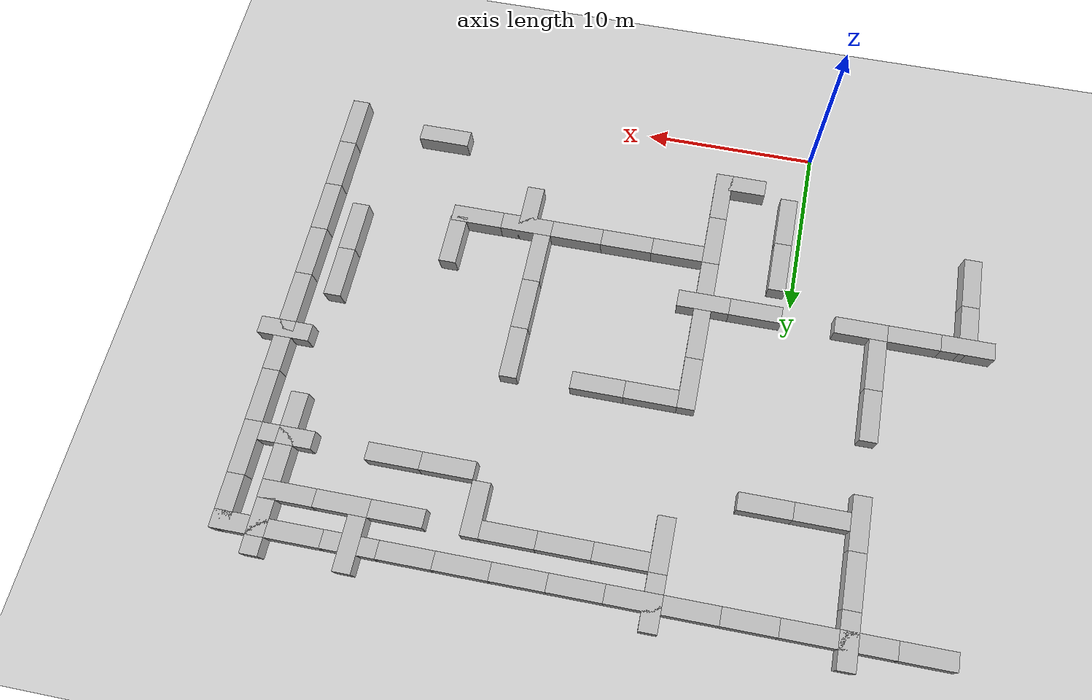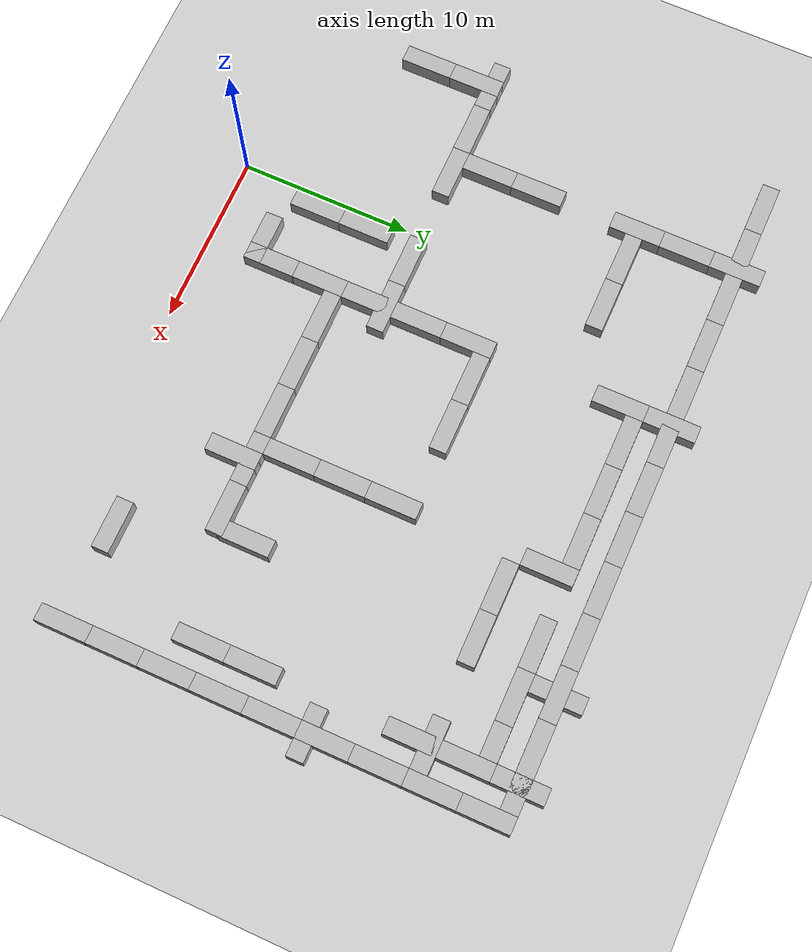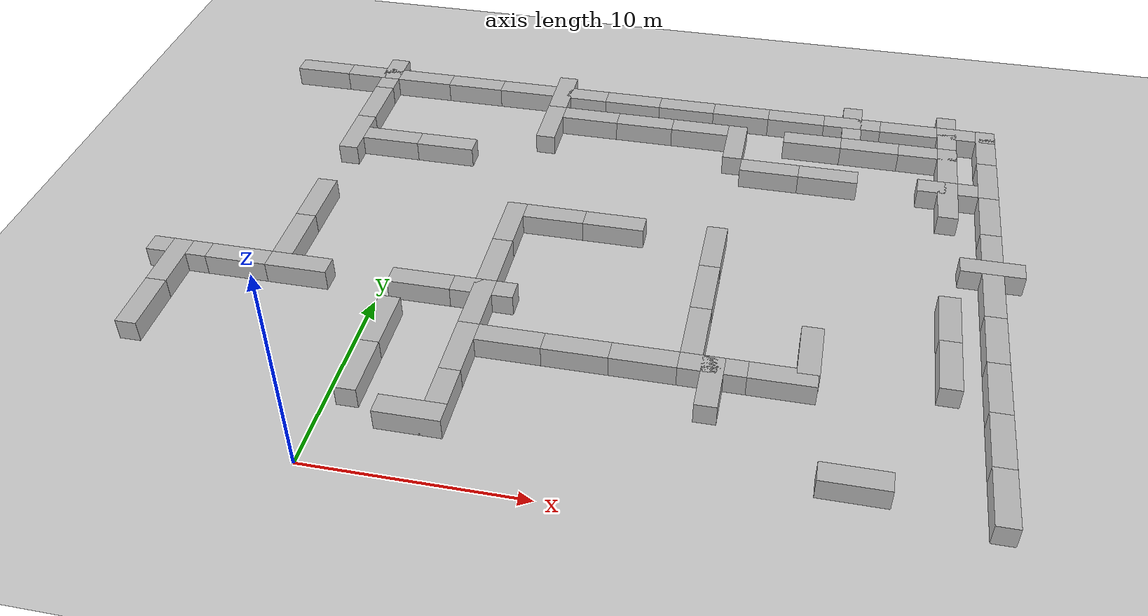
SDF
<sdf version="1.6">
 <world name="default">
  <model name="ground_plane">
   <static>1</static>
   <link name="link">
    <collision name="collision">
     <geometry><plane><normal>0 0 1</normal><size>100 100</size></plane></geometry>
     <surface>
      <contact><collide_bitmask>65535</collide_bitmask></contact>
      <friction><ode><mu>100</mu><mu2>50</mu2></ode></friction>
     </surface>
    </collision>
    <visual name="visual">
     <cast_shadows>0</cast_shadows>
     <geometry><plane><normal>0 0 1</normal><size>100 100</size></plane></geometry>
     <material>
      <script><uri>file://media/materials/scripts/gazebo.material</uri><name>Gazebo/Grey</name></script>
     </material>
    </visual>
   </link>
  </model>
  <model name="wall25">
   <static>1</static>
   <link name="chassis">
    <pose>0 0 1.5 0 -0 0</pose>
    <collision name="collision"><geometry><box><size>3 1 3</size></box></geometry></collision>
    <visual name="visual">
     <geometry><mesh><uri>model://brick_box_3x1x3/meshes/simple_box.dae</uri><scale>3 1 3</scale></mesh></geometry>
     <material>
      <script>
       <uri>model://brick_box_3x1x3/materials/scripts</uri>
       <uri>model://brick_box_3x1x3/materials/textures</uri>
       <name>BrickBox/Diffuse</name>
      </script>
     </material>
    </visual>
   </link>
   <pose>-9 28 -2 0 -0 0</pose>
  </model>
  <model name="wall29">
   <static>1</static>
   <link name="chassis">
    <pose>0 0 1.5 0 -0 0</pose>
    <collision name="collision"><geometry><box><size>3 1 3</size></box></geometry></collision>
    <visual name="visual">
     <geometry><mesh><uri>model://brick_box_3x1x3/meshes/simple_box.dae</uri><scale>3 1 3</scale></mesh></geometry>
     <material>
      <script>
       <uri>model://brick_box_3x1x3/materials/scripts</uri>
       <uri>model://brick_box_3x1x3/materials/textures</uri>
       <name>BrickBox/Diffuse</name>
      </script>
     </material>
    </visual>
   </link>
   <pose>-6 28 -2 0 -0 0</pose>
  </model>
  <model name="wall33">
   <static>1</static>
   <link name="chassis">
    <pose>0 0 1.5 0 -0 0</pose>
    <collision name="collision"><geometry><box><size>3 1 3</size></box></geometry></collision>
    <visual name="visual">
     <geometry><mesh><uri>model://brick_box_3x1x3/meshes/simple_box.dae</uri><scale>3 1 3</scale></mesh></geometry>
     <material>
      <script>
       <uri>model://brick_box_3x1x3/materials/scripts</uri>
       <uri>model://brick_box_3x1x3/materials/textures</uri>
       <name>BrickBox/Diffuse</name>
      </script>
     </material>
    </visual>
   </link>
   <pose>-3 28 -2 0 -0 0</pose>
  </model>
  <model name="wall37">
   <static>1</static>
   <link name="chassis">
    <pose>0 0 1.5 0 -0 0</pose>
    <collision name="collision"><geometry><box><size>3 1 3</size></box></geometry></collision>
    <visual name="visual">
     <geometry><mesh><uri>model://brick_box_3x1x3/meshes/simple_box.dae</uri><scale>3 1 3</scale></mesh></geometry>
     <material>
      <script>
       <uri>model://brick_box_3x1x3/materials/scripts</uri>
       <uri>model://brick_box_3x1x3/materials/textures</uri>
       <name>BrickBox/Diffuse</name>
      </script>
     </material>
    </visual>
   </link>
   <pose>0 28 -2 0 -0 0</pose>
  </model>
  <model name="wall41">
   <static>1</static>
   <link name="chassis">
    <pose>0 0 1.5 0 -0 0</pose>
    <collision name="collision"><geometry><box><size>3 1 3</size></box></geometry></collision>
    <visual name="visual">
     <geometry><mesh><uri>model://brick_box_3x1x3/meshes/simple_box.dae</uri><scale>3 1 3</scale></mesh></geometry>
     <material>
      <script>
       <uri>model://brick_box_3x1x3/materials/scripts</uri>
       <uri>model://brick_box_3x1x3/materials/textures</uri>
       <name>BrickBox/Diffuse</name>
      </script>
     </material>
    </visual>
   </link>
   <pose>3 28 -2 0 -0 0</pose>
  </model>
  <model name="wall43">
   <static>1</static>
   <link name="chassis">
    <pose>0 0 1.5 0 -0 0</pose>
    <collision name="collision"><geometry><box><size>3 1 3</size></box></geometry></collision>
    <visual name="visual">
     <geometry><mesh><uri>model://brick_box_3x1x3/meshes/simple_box.dae</uri><scale>3 1 3</scale></mesh></geometry>
     <material>
      <script>
       <uri>model://brick_box_3x1x3/materials/scripts</uri>
       <uri>model://brick_box_3x1x3/materials/textures</uri>
       <name>BrickBox/Diffuse</name>
      </script>
     </material>
    </visual>
   </link>
   <pose>28 3 -2 0 -0 1.5708</pose>
  </model>
  <model name="wall45">
   <static>1</static>
   <link name="chassis">
    <pose>0 0 1.5 0 -0 0</pose>
    <collision name="collision"><geometry><box><size>3 1 3</size></box></geometry></collision>
    <visual name="visual">
     <geometry><mesh><uri>model://brick_box_3x1x3/meshes/simple_box.dae</uri><scale>3 1 3</scale></mesh></geometry>
     <material>
      <script>
       <uri>model://brick_box_3x1x3/materials/scripts</uri>
       <uri>model://brick_box_3x1x3/materials/textures</uri>
       <name>BrickBox/Diffuse</name>
      </script>
     </material>
    </visual>
   </link>
   <pose>6 28 -2 0 -0 0</pose>
  </model>
  <model name="wall47">
   <static>1</static>
   <link name="chassis">
    <pose>0 0 1.5 0 -0 0</pose>
    <collision name="collision"><geometry><box><size>3 1 3</size></box></geometry></collision>
    <visual name="visual">
     <geometry><mesh><uri>model://brick_box_3x1x3/meshes/simple_box.dae</uri><scale>3 1 3</scale></mesh></geometry>
     <material>
      <script>
       <uri>model://brick_box_3x1x3/materials/scripts</uri>
       <uri>model://brick_box_3x1x3/materials/textures</uri>
       <name>BrickBox/Diffuse</name>
      </script>
     </material>
    </visual>
   </link>
   <pose>28 6 -2 0 -0 1.5708</pose>
  </model>
  <model name="wall49">
   <static>1</static>
   <link name="chassis">
    <pose>0 0 1.5 0 -0 0</pose>
    <collision name="collision"><geometry><box><size>3 1 3</size></box></geometry></collision>
    <visual name="visual">
     <geometry><mesh><uri>model://brick_box_3x1x3/meshes/simple_box.dae</uri><scale>3 1 3</scale></mesh></geometry>
     <material>
      <script>
       <uri>model://brick_box_3x1x3/materials/scripts</uri>
       <uri>model://brick_box_3x1x3/materials/textures</uri>
       <name>BrickBox/Diffuse</name>
      </script>
     </material>
    </visual>
   </link>
   <pose>9 28 -2 0 -0 0</pose>
  </model>
  <model name="wall51">
   <static>1</static>
   <link name="chassis">
    <pose>0 0 1.5 0 -0 0</pose>
    <collision name="collision"><geometry><box><size>3 1 3</size></box></geometry></collision>
    <visual name="visual">
     <geometry><mesh><uri>model://brick_box_3x1x3/meshes/simple_box.dae</uri><scale>3 1 3</scale></mesh></geometry>
     <material>
      <script>
       <uri>model://brick_box_3x1x3/materials/scripts</uri>
       <uri>model://brick_box_3x1x3/materials/textures</uri>
       <name>BrickBox/Diffuse</name>
      </script>
     </material>
    </visual>
   </link>
   <pose>28 9 -2 0 -0 1.5708</pose>
  </model>
  <model name="wall53">
   <static>1</static>
   <link name="chassis">
    <pose>0 0 1.5 0 -0 0</pose>
    <collision name="collision"><geometry><box><size>3 1 3</size></box></geometry></collision>
    <visual name="visual">
     <geometry><mesh><uri>model://brick_box_3x1x3/meshes/simple_box.dae</uri><scale>3 1 3</scale></mesh></geometry>
     <material>
      <script>
       <uri>model://brick_box_3x1x3/materials/scripts</uri>
       <uri>model://brick_box_3x1x3/materials/textures</uri>
       <name>BrickBox/Diffuse</name>
      </script>
     </material>
    </visual>
   </link>
   <pose>12 28 -2 0 -0 0</pose>
  </model>
  <model name="wall55">
   <static>1</static>
   <link name="chassis">
    <pose>0 0 1.5 0 -0 0</pose>
    <collision name="collision"><geometry><box><size>3 1 3</size></box></geometry></collision>
    <visual name="visual">
     <geometry><mesh><uri>model://brick_box_3x1x3/meshes/simple_box.dae</uri><scale>3 1 3</scale></mesh></geometry>
     <material>
      <script>
       <uri>model://brick_box_3x1x3/materials/scripts</uri>
       <uri>model://brick_box_3x1x3/materials/textures</uri>
       <name>BrickBox/Diffuse</name>
      </script>
     </material>
    </visual>
   </link>
   <pose>28 12 -2 0 -0 1.5708</pose>
  </model>
  <model name="wall57">
   <static>1</static>
   <link name="chassis">
    <pose>0 0 1.5 0 -0 0</pose>
    <collision name="collision"><geometry><box><size>3 1 3</size></box></geometry></collision>
    <visual name="visual">
     <geometry><mesh><uri>model://brick_box_3x1x3/meshes/simple_box.dae</uri><scale>3 1 3</scale></mesh></geometry>
     <material>
      <script>
       <uri>model://brick_box_3x1x3/materials/scripts</uri>
       <uri>model://brick_box_3x1x3/materials/textures</uri>
       <name>BrickBox/Diffuse</name>
      </script>
     </material>
    </visual>
   </link>
   <pose>15 28 -2 0 -0 0</pose>
  </model>
  <model name="wall59">
   <static>1</static>
   <link name="chassis">
    <pose>0 0 1.5 0 -0 0</pose>
    <collision name="collision"><geometry><box><size>3 1 3</size></box></geometry></collision>
    <visual name="visual">
     <geometry><mesh><uri>model://brick_box_3x1x3/meshes/simple_box.dae</uri><scale>3 1 3</scale></mesh></geometry>
     <material>
      <script>
       <uri>model://brick_box_3x1x3/materials/scripts</uri>
       <uri>model://brick_box_3x1x3/materials/textures</uri>
       <name>BrickBox/Diffuse</name>
      </script>
     </material>
    </visual>
   </link>
   <pose>28 15 -2 0 -0 1.5708</pose>
  </model>
  <model name="wall61">
   <static>1</static>
   <link name="chassis">
    <pose>0 0 1.5 0 -0 0</pose>
    <collision name="collision"><geometry><box><size>3 1 3</size></box></geometry></collision>
    <visual name="visual">
     <geometry><mesh><uri>model://brick_box_3x1x3/meshes/simple_box.dae</uri><scale>3 1 3</scale></mesh></geometry>
     <material>
      <script>
       <uri>model://brick_box_3x1x3/materials/scripts</uri>
       <uri>model://brick_box_3x1x3/materials/textures</uri>
       <name>BrickBox/Diffuse</name>
      </script>
     </material>
    </visual>
   </link>
   <pose>18 28 -2 0 -0 0</pose>
  </model>
  <model name="wall63">
   <static>1</static>
   <link name="chassis">
    <pose>0 0 1.5 0 -0 0</pose>
    <collision name="collision"><geometry><box><size>3 1 3</size></box></geometry></collision>
    <visual name="visual">
     <geometry><mesh><uri>model://brick_box_3x1x3/meshes/simple_box.dae</uri><scale>3 1 3</scale></mesh></geometry>
     <material>
      <script>
       <uri>model://brick_box_3x1x3/materials/scripts</uri>
       <uri>model://brick_box_3x1x3/materials/textures</uri>
       <name>BrickBox/Diffuse</name>
      </script>
     </material>
    </visual>
   </link>
   <pose>28 18 -2 0 -0 1.5708</pose>
  </model>
  <model name="wall65">
   <static>1</static>
   <link name="chassis">
    <pose>0 0 1.5 0 -0 0</pose>
    <collision name="collision"><geometry><box><size>3 1 3</size></box></geometry></collision>
    <visual name="visual">
     <geometry><mesh><uri>model://brick_box_3x1x3/meshes/simple_box.dae</uri><scale>3 1 3</scale></mesh></geometry>
     <material>
      <script>
       <uri>model://brick_box_3x1x3/materials/scripts</uri>
       <uri>model://brick_box_3x1x3/materials/textures</uri>
       <name>BrickBox/Diffuse</name>
      </script>
     </material>
    </visual>
   </link>
   <pose>21 28 -2 0 -0 0</pose>
  </model>
  <model name="wall67">
   <static>1</static>
   <link name="chassis">
    <pose>0 0 1.5 0 -0 0</pose>
    <collision name="collision"><geometry><box><size>3 1 3</size></box></geometry></collision>
    <visual name="visual">
     <geometry><mesh><uri>model://brick_box_3x1x3/meshes/simple_box.dae</uri><scale>3 1 3</scale></mesh></geometry>
     <material>
      <script>
       <uri>model://brick_box_3x1x3/materials/scripts</uri>
       <uri>model://brick_box_3x1x3/materials/textures</uri>
       <name>BrickBox/Diffuse</name>
      </script>
     </material>
    </visual>
   </link>
   <pose>28 21 -2 0 -0 1.5708</pose>
  </model>
  <model name="wall69">
   <static>1</static>
   <link name="chassis">
    <pose>0 0 1.5 0 -0 0</pose>
    <collision name="collision"><geometry><box><size>3 1 3</size></box></geometry></collision>
    <visual name="visual">
     <geometry><mesh><uri>model://brick_box_3x1x3/meshes/simple_box.dae</uri><scale>3 1 3</scale></mesh></geometry>
     <material>
      <script>
       <uri>model://brick_box_3x1x3/materials/scripts</uri>
       <uri>model://brick_box_3x1x3/materials/textures</uri>
       <name>BrickBox/Diffuse</name>
      </script>
     </material>
    </visual>
   </link>
   <pose>24 28 -2 0 -0 0</pose>
  </model>
  <model name="wall71">
   <static>1</static>
   <link name="chassis">
    <pose>0 0 1.5 0 -0 0</pose>
    <collision name="collision"><geometry><box><size>3 1 3</size></box></geometry></collision>
    <visual name="visual">
     <geometry><mesh><uri>model://brick_box_3x1x3/meshes/simple_box.dae</uri><scale>3 1 3</scale></mesh></geometry>
     <material>
      <script>
       <uri>model://brick_box_3x1x3/materials/scripts</uri>
       <uri>model://brick_box_3x1x3/materials/textures</uri>
       <name>BrickBox/Diffuse</name>
      </script>
     </material>
    </visual>
   </link>
   <pose>28 24 -2 0 -0 1.5708</pose>
  </model>
  <model name="wall73">
   <static>1</static>
   <link name="chassis">
    <pose>0 0 1.5 0 -0 0</pose>
    <collision name="collision"><geometry><box><size>3 1 3</size></box></geometry></collision>
    <visual name="visual">
     <geometry><mesh><uri>model://brick_box_3x1x3/meshes/simple_box.dae</uri><scale>3 1 3</scale></mesh></geometry>
     <material>
      <script>
       <uri>model://brick_box_3x1x3/materials/scripts</uri>
       <uri>model://brick_box_3x1x3/materials/textures</uri>
       <name>BrickBox/Diffuse</name>
      </script>
     </material>
    </visual>
   </link>
   <pose>27 28 -2 0 -0 0</pose>
  </model>
  <model name="wall75">
   <static>1</static>
   <link name="chassis">
    <pose>0 0 1.5 0 -0 0</pose>
    <collision name="collision"><geometry><box><size>3 1 3</size></box></geometry></collision>
    <visual name="visual">
     <geometry><mesh><uri>model://brick_box_3x1x3/meshes/simple_box.dae</uri><scale>3 1 3</scale></mesh></geometry>
     <material>
      <script>
       <uri>model://brick_box_3x1x3/materials/scripts</uri>
       <uri>model://brick_box_3x1x3/materials/textures</uri>
       <name>BrickBox/Diffuse</name>
      </script>
     </material>
    </visual>
   </link>
   <pose>28 27 -2 0 -0 1.5708</pose>
  </model>
  <model name="wall128">
   <static>1</static>
   <link name="chassis">
    <pose>0 0 1.5 0 -0 0</pose>
    <collision name="collision"><geometry><box><size>3 1 3</size></box></geometry></collision>
    <visual name="visual">
     <geometry><mesh><uri>model://brick_box_3x1x3/meshes/simple_box.dae</uri><scale>3 1 3</scale></mesh></geometry>
     <material>
      <script>
       <uri>model://brick_box_3x1x3/materials/scripts</uri>
       <uri>model://brick_box_3x1x3/materials/textures</uri>
       <name>BrickBox/Diffuse</name>
      </script>
     </material>
    </visual>
   </link>
   <pose>20.0507 9.72113 -2 0 -0 1.5708</pose>
  </model>
  <model name="wall135">
   <static>1</static>
   <link name="chassis">
    <pose>0 0 1.5 0 -0 0</pose>
    <collision name="collision"><geometry><box><size>3 1 3</size></box></geometry></collision>
    <visual name="visual">
     <geometry><mesh><uri>model://brick_box_3x1x3/meshes/simple_box.dae</uri><scale>3 1 3</scale></mesh></geometry>
     <material>
      <script>
       <uri>model://brick_box_3x1x3/materials/scripts</uri>
       <uri>model://brick_box_3x1x3/materials/textures</uri>
       <name>BrickBox/Diffuse</name>
      </script>
     </material>
    </visual>
   </link>
   <pose>5 4 -2 0 -0 1.5708</pose>
  </model>
  <model name="wall136">
   <static>1</static>
   <link name="chassis">
    <pose>0 0 1.5 0 -0 0</pose>
    <collision name="collision"><geometry><box><size>3 1 3</size></box></geometry></collision>
    <visual name="visual">
     <geometry><mesh><uri>model://brick_box_3x1x3/meshes/simple_box.dae</uri><scale>3 1 3</scale></mesh></geometry>
     <material>
      <script>
       <uri>model://brick_box_3x1x3/materials/scripts</uri>
       <uri>model://brick_box_3x1x3/materials/textures</uri>
       <name>BrickBox/Diffuse</name>
      </script>
     </material>
    </visual>
   </link>
   <pose>5 7 -2 0 -0 1.5708</pose>
  </model>
  <model name="wall137">
   <static>1</static>
   <link name="chassis">
    <pose>0 0 1.5 0 -0 0</pose>
    <collision name="collision"><geometry><box><size>3 1 3</size></box></geometry></collision>
    <visual name="visual">
     <geometry><mesh><uri>model://brick_box_3x1x3/meshes/simple_box.dae</uri><scale>3 1 3</scale></mesh></geometry>
     <material>
      <script>
       <uri>model://brick_box_3x1x3/materials/scripts</uri>
       <uri>model://brick_box_3x1x3/materials/textures</uri>
       <name>BrickBox/Diffuse</name>
      </script>
     </material>
    </visual>
   </link>
   <pose>5 10 -2 0 -0 1.5708</pose>
  </model>
  <model name="wall138">
   <static>1</static>
   <link name="chassis">
    <pose>0 0 1.5 0 -0 0</pose>
    <collision name="collision"><geometry><box><size>3 1 3</size></box></geometry></collision>
    <visual name="visual">
     <geometry><mesh><uri>model://brick_box_3x1x3/meshes/simple_box.dae</uri><scale>3 1 3</scale></mesh></geometry>
     <material>
      <script>
       <uri>model://brick_box_3x1x3/materials/scripts</uri>
       <uri>model://brick_box_3x1x3/materials/textures</uri>
       <name>BrickBox/Diffuse</name>
      </script>
     </material>
    </visual>
   </link>
   <pose>5 13 -2 0 -0 1.5708</pose>
  </model>
  <model name="wall139">
   <static>1</static>
   <link name="chassis">
    <pose>0 0 1.5 0 -0 0</pose>
    <collision name="collision"><geometry><box><size>3 1 3</size></box></geometry></collision>
    <visual name="visual">
     <geometry><mesh><uri>model://brick_box_3x1x3/meshes/simple_box.dae</uri><scale>3 1 3</scale></mesh></geometry>
     <material>
      <script>
       <uri>model://brick_box_3x1x3/materials/scripts</uri>
       <uri>model://brick_box_3x1x3/materials/textures</uri>
       <name>BrickBox/Diffuse</name>
      </script>
     </material>
    </visual>
   </link>
   <pose>5 16 -2 0 -0 1.5708</pose>
  </model>
  <model name="wall140">
   <static>1</static>
   <link name="chassis">
    <pose>0 0 1.5 0 -0 0</pose>
    <collision name="collision"><geometry><box><size>3 1 3</size></box></geometry></collision>
    <visual name="visual">
     <geometry><mesh><uri>model://brick_box_3x1x3/meshes/simple_box.dae</uri><scale>3 1 3</scale></mesh></geometry>
     <material>
      <script>
       <uri>model://brick_box_3x1x3/materials/scripts</uri>
       <uri>model://brick_box_3x1x3/materials/textures</uri>
       <name>BrickBox/Diffuse</name>
      </script>
     </material>
    </visual>
   </link>
   <pose>5 25 -2 0 -0 1.5708</pose>
  </model>
  <model name="wall141">
   <static>1</static>
   <link name="chassis">
    <pose>0 0 1.5 0 -0 0</pose>
    <collision name="collision"><geometry><box><size>3 1 3</size></box></geometry></collision>
    <visual name="visual">
     <geometry><mesh><uri>model://brick_box_3x1x3/meshes/simple_box.dae</uri><scale>3 1 3</scale></mesh></geometry>
     <material>
      <script>
       <uri>model://brick_box_3x1x3/materials/scripts</uri>
       <uri>model://brick_box_3x1x3/materials/textures</uri>
       <name>BrickBox/Diffuse</name>
      </script>
     </material>
    </visual>
   </link>
   <pose>5 28 -2 0 -0 1.5708</pose>
  </model>
  <model name="wall144">
   <static>1</static>
   <link name="chassis">
    <pose>0 0 1.5 0 -0 0</pose>
    <collision name="collision"><geometry><box><size>3 1 3</size></box></geometry></collision>
    <visual name="visual">
     <geometry><mesh><uri>model://brick_box_3x1x3/meshes/simple_box.dae</uri><scale>3 1 3</scale></mesh></geometry>
     <material>
      <script>
       <uri>model://brick_box_3x1x3/materials/scripts</uri>
       <uri>model://brick_box_3x1x3/materials/textures</uri>
       <name>BrickBox/Diffuse</name>
      </script>
     </material>
    </visual>
   </link>
   <pose>-10 11 -2 0 -0 0</pose>
  </model>
  <model name="wall145">
   <static>1</static>
   <link name="chassis">
    <pose>0 0 1.5 0 -0 0</pose>
    <collision name="collision"><geometry><box><size>3 1 3</size></box></geometry></collision>
    <visual name="visual">
     <geometry><mesh><uri>model://brick_box_3x1x3/meshes/simple_box.dae</uri><scale>3 1 3</scale></mesh></geometry>
     <material>
      <script>
       <uri>model://brick_box_3x1x3/materials/scripts</uri>
       <uri>model://brick_box_3x1x3/materials/textures</uri>
       <name>BrickBox/Diffuse</name>
      </script>
     </material>
    </visual>
   </link>
   <pose>-7 11 -2 0 -0 0</pose>
  </model>
  <model name="wall146">
   <static>1</static>
   <link name="chassis">
    <pose>0 0 1.5 0 -0 0</pose>
    <collision name="collision"><geometry><box><size>3 1 3</size></box></geometry></collision>
    <visual name="visual">
     <geometry><mesh><uri>model://brick_box_3x1x3/meshes/simple_box.dae</uri><scale>3 1 3</scale></mesh></geometry>
     <material>
      <script>
       <uri>model://brick_box_3x1x3/materials/scripts</uri>
       <uri>model://brick_box_3x1x3/materials/textures</uri>
       <name>BrickBox/Diffuse</name>
      </script>
     </material>
    </visual>
   </link>
   <pose>-4 11 -2 0 -0 0</pose>
  </model>
  <model name="wall147">
   <static>1</static>
   <link name="chassis">
    <pose>0 0 1.5 0 -0 0</pose>
    <collision name="collision"><geometry><box><size>3 1 3</size></box></geometry></collision>
    <visual name="visual">
     <geometry><mesh><uri>model://brick_box_3x1x3/meshes/simple_box.dae</uri><scale>3 1 3</scale></mesh></geometry>
     <material>
      <script>
       <uri>model://brick_box_3x1x3/materials/scripts</uri>
       <uri>model://brick_box_3x1x3/materials/textures</uri>
       <name>BrickBox/Diffuse</name>
      </script>
     </material>
    </visual>
   </link>
   <pose>2 11 -2 0 -0 0</pose>
  </model>
  <model name="wall148">
   <static>1</static>
   <link name="chassis">
    <pose>0 0 1.5 0 -0 0</pose>
    <collision name="collision"><geometry><box><size>3 1 3</size></box></geometry></collision>
    <visual name="visual">
     <geometry><mesh><uri>model://brick_box_3x1x3/meshes/simple_box.dae</uri><scale>3 1 3</scale></mesh></geometry>
     <material>
      <script>
       <uri>model://brick_box_3x1x3/materials/scripts</uri>
       <uri>model://brick_box_3x1x3/materials/textures</uri>
       <name>BrickBox/Diffuse</name>
      </script>
     </material>
    </visual>
   </link>
   <pose>5 11 -2 0 -0 0</pose>
  </model>
  <model name="wall153">
   <static>1</static>
   <link name="chassis">
    <pose>0 0 1.5 0 -0 0</pose>
    <collision name="collision"><geometry><box><size>3 1 3</size></box></geometry></collision>
    <visual name="visual">
     <geometry><mesh><uri>model://brick_box_3x1x3/meshes/simple_box.dae</uri><scale>3 1 3</scale></mesh></geometry>
     <material>
      <script>
       <uri>model://brick_box_3x1x3/materials/scripts</uri>
       <uri>model://brick_box_3x1x3/materials/textures</uri>
       <name>BrickBox/Diffuse</name>
      </script>
     </material>
    </visual>
   </link>
   <pose>-10 7 -2 0 -0 1.5708</pose>
  </model>
  <model name="wall154">
   <static>1</static>
   <link name="chassis">
    <pose>0 0 1.5 0 -0 0</pose>
    <collision name="collision"><geometry><box><size>3 1 3</size></box></geometry></collision>
    <visual name="visual">
     <geometry><mesh><uri>model://brick_box_3x1x3/meshes/simple_box.dae</uri><scale>3 1 3</scale></mesh></geometry>
     <material>
      <script>
       <uri>model://brick_box_3x1x3/materials/scripts</uri>
       <uri>model://brick_box_3x1x3/materials/textures</uri>
       <name>BrickBox/Diffuse</name>
      </script>
     </material>
    </visual>
   </link>
   <pose>-10 10 -2 0 -0 1.5708</pose>
  </model>
  <model name="wall159">
   <static>1</static>
   <link name="chassis">
    <pose>0 0 1.5 0 -0 0</pose>
    <collision name="collision"><geometry><box><size>3 1 3</size></box></geometry></collision>
    <visual name="visual">
     <geometry><mesh><uri>model://brick_box_3x1x3/meshes/simple_box.dae</uri><scale>3 1 3</scale></mesh></geometry>
     <material>
      <script>
       <uri>model://brick_box_3x1x3/materials/scripts</uri>
       <uri>model://brick_box_3x1x3/materials/textures</uri>
       <name>BrickBox/Diffuse</name>
      </script>
     </material>
    </visual>
   </link>
   <pose>4 3 -2 0 -0 0</pose>
  </model>
  <model name="wall167">
   <static>1</static>
   <link name="chassis">
    <pose>0 0 1.5 0 -0 0</pose>
    <collision name="collision"><geometry><box><size>3 1 3</size></box></geometry></collision>
    <visual name="visual">
     <geometry><mesh><uri>model://brick_box_3x1x3/meshes/simple_box.dae</uri><scale>3 1 3</scale></mesh></geometry>
     <material>
      <script>
       <uri>model://brick_box_3x1x3/materials/scripts</uri>
       <uri>model://brick_box_3x1x3/materials/textures</uri>
       <name>BrickBox/Diffuse</name>
      </script>
     </material>
    </visual>
   </link>
   <pose>1 5 -2 0 -0 1.5708</pose>
  </model>
  <model name="wall168">
   <static>1</static>
   <link name="chassis">
    <pose>0 0 1.5 0 -0 0</pose>
    <collision name="collision"><geometry><box><size>3 1 3</size></box></geometry></collision>
    <visual name="visual">
     <geometry><mesh><uri>model://brick_box_3x1x3/meshes/simple_box.dae</uri><scale>3 1 3</scale></mesh></geometry>
     <material>
      <script>
       <uri>model://brick_box_3x1x3/materials/scripts</uri>
       <uri>model://brick_box_3x1x3/materials/textures</uri>
       <name>BrickBox/Diffuse</name>
      </script>
     </material>
    </visual>
   </link>
   <pose>1 8 -2 0 -0 1.5708</pose>
  </model>
  <model name="wall169">
   <static>1</static>
   <link name="chassis">
    <pose>0 0 1.5 0 -0 0</pose>
    <collision name="collision"><geometry><box><size>3 1 3</size></box></geometry></collision>
    <visual name="visual">
     <geometry><mesh><uri>model://brick_box_3x1x3/meshes/simple_box.dae</uri><scale>3 1 3</scale></mesh></geometry>
     <material>
      <script>
       <uri>model://brick_box_3x1x3/materials/scripts</uri>
       <uri>model://brick_box_3x1x3/materials/textures</uri>
       <name>BrickBox/Diffuse</name>
      </script>
     </material>
    </visual>
   </link>
   <pose>-5 13 -2 0 -0 1.5708</pose>
  </model>
  <model name="wall170">
   <static>1</static>
   <link name="chassis">
    <pose>0 0 1.5 0 -0 0</pose>
    <collision name="collision"><geometry><box><size>3 1 3</size></box></geometry></collision>
    <visual name="visual">
     <geometry><mesh><uri>model://brick_box_3x1x3/meshes/simple_box.dae</uri><scale>3 1 3</scale></mesh></geometry>
     <material>
      <script>
       <uri>model://brick_box_3x1x3/materials/scripts</uri>
       <uri>model://brick_box_3x1x3/materials/textures</uri>
       <name>BrickBox/Diffuse</name>
      </script>
     </material>
    </visual>
   </link>
   <pose>-5 16 -2 0 -0 1.5708</pose>
  </model>
  <model name="wall171">
   <static>1</static>
   <link name="chassis">
    <pose>0 0 1.5 0 -0 0</pose>
    <collision name="collision"><geometry><box><size>3 1 3</size></box></geometry></collision>
    <visual name="visual">
     <geometry><mesh><uri>model://brick_box_3x1x3/meshes/simple_box.dae</uri><scale>3 1 3</scale></mesh></geometry>
     <material>
      <script>
       <uri>model://brick_box_3x1x3/materials/scripts</uri>
       <uri>model://brick_box_3x1x3/materials/textures</uri>
       <name>BrickBox/Diffuse</name>
      </script>
     </material>
    </visual>
   </link>
   <pose>-5 22 -2 0 -0 1.5708</pose>
  </model>
  <model name="wall172">
   <static>1</static>
   <link name="chassis">
    <pose>0 0 1.5 0 -0 0</pose>
    <collision name="collision"><geometry><box><size>3 1 3</size></box></geometry></collision>
    <visual name="visual">
     <geometry><mesh><uri>model://brick_box_3x1x3/meshes/simple_box.dae</uri><scale>3 1 3</scale></mesh></geometry>
     <material>
      <script>
       <uri>model://brick_box_3x1x3/materials/scripts</uri>
       <uri>model://brick_box_3x1x3/materials/textures</uri>
       <name>BrickBox/Diffuse</name>
      </script>
     </material>
    </visual>
   </link>
   <pose>-5 25 -2 0 -0 1.5708</pose>
  </model>
  <model name="wall173">
   <static>1</static>
   <link name="chassis">
    <pose>0 0 1.5 0 -0 0</pose>
    <collision name="collision"><geometry><box><size>3 1 3</size></box></geometry></collision>
    <visual name="visual">
     <geometry><mesh><uri>model://brick_box_3x1x3/meshes/simple_box.dae</uri><scale>3 1 3</scale></mesh></geometry>
     <material>
      <script>
       <uri>model://brick_box_3x1x3/materials/scripts</uri>
       <uri>model://brick_box_3x1x3/materials/textures</uri>
       <name>BrickBox/Diffuse</name>
      </script>
     </material>
    </visual>
   </link>
   <pose>-5 28 -2 0 -0 1.5708</pose>
  </model>
  <model name="wall176">
   <static>1</static>
   <link name="chassis">
    <pose>0 0 1.5 0 -0 0</pose>
    <collision name="collision"><geometry><box><size>3 1 3</size></box></geometry></collision>
    <visual name="visual">
     <geometry><mesh><uri>model://brick_box_3x1x3/meshes/simple_box.dae</uri><scale>3 1 3</scale></mesh></geometry>
     <material>
      <script>
       <uri>model://brick_box_3x1x3/materials/scripts</uri>
       <uri>model://brick_box_3x1x3/materials/textures</uri>
       <name>BrickBox/Diffuse</name>
      </script>
     </material>
    </visual>
   </link>
   <pose>-3 22 -2 0 -0 0</pose>
  </model>
  <model name="wall177">
   <static>1</static>
   <link name="chassis">
    <pose>0 0 1.5 0 -0 0</pose>
    <collision name="collision"><geometry><box><size>3 1 3</size></box></geometry></collision>
    <visual name="visual">
     <geometry><mesh><uri>model://brick_box_3x1x3/meshes/simple_box.dae</uri><scale>3 1 3</scale></mesh></geometry>
     <material>
      <script>
       <uri>model://brick_box_3x1x3/materials/scripts</uri>
       <uri>model://brick_box_3x1x3/materials/textures</uri>
       <name>BrickBox/Diffuse</name>
      </script>
     </material>
    </visual>
   </link>
   <pose>0 22 -2 0 -0 0</pose>
  </model>
  <model name="wall178">
   <static>1</static>
   <link name="chassis">
    <pose>0 0 1.5 0 -0 0</pose>
    <collision name="collision"><geometry><box><size>3 1 3</size></box></geometry></collision>
    <visual name="visual">
     <geometry><mesh><uri>model://brick_box_3x1x3/meshes/simple_box.dae</uri><scale>3 1 3</scale></mesh></geometry>
     <material>
      <script>
       <uri>model://brick_box_3x1x3/materials/scripts</uri>
       <uri>model://brick_box_3x1x3/materials/textures</uri>
       <name>BrickBox/Diffuse</name>
      </script>
     </material>
    </visual>
   </link>
   <pose>7 8 -2 0 -0 0</pose>
  </model>
  <model name="wall179">
   <static>1</static>
   <link name="chassis">
    <pose>0 0 1.5 0 -0 0</pose>
    <collision name="collision"><geometry><box><size>3 1 3</size></box></geometry></collision>
    <visual name="visual">
     <geometry><mesh><uri>model://brick_box_3x1x3/meshes/simple_box.dae</uri><scale>3 1 3</scale></mesh></geometry>
     <material>
      <script>
       <uri>model://brick_box_3x1x3/materials/scripts</uri>
       <uri>model://brick_box_3x1x3/materials/textures</uri>
       <name>BrickBox/Diffuse</name>
      </script>
     </material>
    </visual>
   </link>
   <pose>10 8 -2 0 -0 0</pose>
  </model>
  <model name="wall180">
   <static>1</static>
   <link name="chassis">
    <pose>0 0 1.5 0 -0 0</pose>
    <collision name="collision"><geometry><box><size>3 1 3</size></box></geometry></collision>
    <visual name="visual">
     <geometry><mesh><uri>model://brick_box_3x1x3/meshes/simple_box.dae</uri><scale>3 1 3</scale></mesh></geometry>
     <material>
      <script>
       <uri>model://brick_box_3x1x3/materials/scripts</uri>
       <uri>model://brick_box_3x1x3/materials/textures</uri>
       <name>BrickBox/Diffuse</name>
      </script>
     </material>
    </visual>
   </link>
   <pose>13 8 -2 0 -0 0</pose>
  </model>
  <model name="wall181">
   <static>1</static>
   <link name="chassis">
    <pose>0 0 1.5 0 -0 0</pose>
    <collision name="collision"><geometry><box><size>3 1 3</size></box></geometry></collision>
    <visual name="visual">
     <geometry><mesh><uri>model://brick_box_3x1x3/meshes/simple_box.dae</uri><scale>3 1 3</scale></mesh></geometry>
     <material>
      <script>
       <uri>model://brick_box_3x1x3/materials/scripts</uri>
       <uri>model://brick_box_3x1x3/materials/textures</uri>
       <name>BrickBox/Diffuse</name>
      </script>
     </material>
    </visual>
   </link>
   <pose>16 8 -2 0 -0 0</pose>
  </model>
  <model name="wall182">
   <static>1</static>
   <link name="chassis">
    <pose>0 0 1.5 0 -0 0</pose>
    <collision name="collision"><geometry><box><size>3 1 3</size></box></geometry></collision>
    <visual name="visual">
     <geometry><mesh><uri>model://brick_box_3x1x3/meshes/simple_box.dae</uri><scale>3 1 3</scale></mesh></geometry>
     <material>
      <script>
       <uri>model://brick_box_3x1x3/materials/scripts</uri>
       <uri>model://brick_box_3x1x3/materials/textures</uri>
       <name>BrickBox/Diffuse</name>
      </script>
     </material>
    </visual>
   </link>
   <pose>19 8 -2 0 -0 0</pose>
  </model>
  <model name="wall183">
   <static>1</static>
   <link name="chassis">
    <pose>0 0 1.5 0 -0 0</pose>
    <collision name="collision"><geometry><box><size>3 1 3</size></box></geometry></collision>
    <visual name="visual">
     <geometry><mesh><uri>model://brick_box_3x1x3/meshes/simple_box.dae</uri><scale>3 1 3</scale></mesh></geometry>
     <material>
      <script>
       <uri>model://brick_box_3x1x3/materials/scripts</uri>
       <uri>model://brick_box_3x1x3/materials/textures</uri>
       <name>BrickBox/Diffuse</name>
      </script>
     </material>
    </visual>
   </link>
   <pose>22.2605 2.91514 -2 0 -0 0</pose>
  </model>
  <model name="wall188">
   <static>1</static>
   <link name="chassis">
    <pose>0 0 1.5 0 -0 0</pose>
    <collision name="collision"><geometry><box><size>3 1 3</size></box></geometry></collision>
    <visual name="visual">
     <geometry><mesh><uri>model://brick_box_3x1x3/meshes/simple_box.dae</uri><scale>3 1 3</scale></mesh></geometry>
     <material>
      <script>
       <uri>model://brick_box_3x1x3/materials/scripts</uri>
       <uri>model://brick_box_3x1x3/materials/textures</uri>
       <name>BrickBox/Diffuse</name>
      </script>
     </material>
    </visual>
   </link>
   <pose>16 7 -2 0 -0 1.5708</pose>
  </model>
  <model name="wall192">
   <static>1</static>
   <link name="chassis">
    <pose>0 0 1.5 0 -0 0</pose>
    <collision name="collision"><geometry><box><size>3 1 3</size></box></geometry></collision>
    <visual name="visual">
     <geometry><mesh><uri>model://brick_box_3x1x3/meshes/simple_box.dae</uri><scale>3 1 3</scale></mesh></geometry>
     <material>
      <script>
       <uri>model://brick_box_3x1x3/materials/scripts</uri>
       <uri>model://brick_box_3x1x3/materials/textures</uri>
       <name>BrickBox/Diffuse</name>
      </script>
     </material>
    </visual>
   </link>
   <pose>26 10 -2 0 -0 1.5708</pose>
  </model>
  <model name="wall193">
   <static>1</static>
   <link name="chassis">
    <pose>0 0 1.5 0 -0 0</pose>
    <collision name="collision"><geometry><box><size>3 1 3</size></box></geometry></collision>
    <visual name="visual">
     <geometry><mesh><uri>model://brick_box_3x1x3/meshes/simple_box.dae</uri><scale>3 1 3</scale></mesh></geometry>
     <material>
      <script>
       <uri>model://brick_box_3x1x3/materials/scripts</uri>
       <uri>model://brick_box_3x1x3/materials/textures</uri>
       <name>BrickBox/Diffuse</name>
      </script>
     </material>
    </visual>
   </link>
   <pose>26 13 -2 0 -0 1.5708</pose>
  </model>
  <model name="wall194">
   <static>1</static>
   <link name="chassis">
    <pose>0 0 1.5 0 -0 0</pose>
    <collision name="collision"><geometry><box><size>3 1 3</size></box></geometry></collision>
    <visual name="visual">
     <geometry><mesh><uri>model://brick_box_3x1x3/meshes/simple_box.dae</uri><scale>3 1 3</scale></mesh></geometry>
     <material>
      <script>
       <uri>model://brick_box_3x1x3/materials/scripts</uri>
       <uri>model://brick_box_3x1x3/materials/textures</uri>
       <name>BrickBox/Diffuse</name>
      </script>
     </material>
    </visual>
   </link>
   <pose>26 22 -2 0 -0 1.5708</pose>
  </model>
  <model name="wall195">
   <static>1</static>
   <link name="chassis">
    <pose>0 0 1.5 0 -0 0</pose>
    <collision name="collision"><geometry><box><size>3 1 3</size></box></geometry></collision>
    <visual name="visual">
     <geometry><mesh><uri>model://brick_box_3x1x3/meshes/simple_box.dae</uri><scale>3 1 3</scale></mesh></geometry>
     <material>
      <script>
       <uri>model://brick_box_3x1x3/materials/scripts</uri>
       <uri>model://brick_box_3x1x3/materials/textures</uri>
       <name>BrickBox/Diffuse</name>
      </script>
     </material>
    </visual>
   </link>
   <pose>26 25 -2 0 -0 1.5708</pose>
  </model>
  <model name="wall196">
   <static>1</static>
   <link name="chassis">
    <pose>0 0 1.5 0 -0 0</pose>
    <collision name="collision"><geometry><box><size>3 1 3</size></box></geometry></collision>
    <visual name="visual">
     <geometry><mesh><uri>model://brick_box_3x1x3/meshes/simple_box.dae</uri><scale>3 1 3</scale></mesh></geometry>
     <material>
      <script>
       <uri>model://brick_box_3x1x3/materials/scripts</uri>
       <uri>model://brick_box_3x1x3/materials/textures</uri>
       <name>BrickBox/Diffuse</name>
      </script>
     </material>
    </visual>
   </link>
   <pose>26 28 -2 0 -0 1.5708</pose>
  </model>
  <model name="wall197">
   <static>1</static>
   <link name="chassis">
    <pose>0 0 1.5 0 -0 0</pose>
    <collision name="collision"><geometry><box><size>3 1 3</size></box></geometry></collision>
    <visual name="visual">
     <geometry><mesh><uri>model://brick_box_3x1x3/meshes/simple_box.dae</uri><scale>3 1 3</scale></mesh></geometry>
     <material>
      <script>
       <uri>model://brick_box_3x1x3/materials/scripts</uri>
       <uri>model://brick_box_3x1x3/materials/textures</uri>
       <name>BrickBox/Diffuse</name>
      </script>
     </material>
    </visual>
   </link>
   <pose>7 26 -2 0 -0 0</pose>
  </model>
  <model name="wall198">
   <static>1</static>
   <link name="chassis">
    <pose>0 0 1.5 0 -0 0</pose>
    <collision name="collision"><geometry><box><size>3 1 3</size></box></geometry></collision>
    <visual name="visual">
     <geometry><mesh><uri>model://brick_box_3x1x3/meshes/simple_box.dae</uri><scale>3 1 3</scale></mesh></geometry>
     <material>
      <script>
       <uri>model://brick_box_3x1x3/materials/scripts</uri>
       <uri>model://brick_box_3x1x3/materials/textures</uri>
       <name>BrickBox/Diffuse</name>
      </script>
     </material>
    </visual>
   </link>
   <pose>10 26 -2 0 -0 0</pose>
  </model>
  <model name="wall199">
   <static>1</static>
   <link name="chassis">
    <pose>0 0 1.5 0 -0 0</pose>
    <collision name="collision"><geometry><box><size>3 1 3</size></box></geometry></collision>
    <visual name="visual">
     <geometry><mesh><uri>model://brick_box_3x1x3/meshes/simple_box.dae</uri><scale>3 1 3</scale></mesh></geometry>
     <material>
      <script>
       <uri>model://brick_box_3x1x3/materials/scripts</uri>
       <uri>model://brick_box_3x1x3/materials/textures</uri>
       <name>BrickBox/Diffuse</name>
      </script>
     </material>
    </visual>
   </link>
   <pose>13 26 -2 0 -0 0</pose>
  </model>
  <model name="wall200">
   <static>1</static>
   <link name="chassis">
    <pose>0 0 1.5 0 -0 0</pose>
    <collision name="collision"><geometry><box><size>3 1 3</size></box></geometry></collision>
    <visual name="visual">
     <geometry><mesh><uri>model://brick_box_3x1x3/meshes/simple_box.dae</uri><scale>3 1 3</scale></mesh></geometry>
     <material>
      <script>
       <uri>model://brick_box_3x1x3/materials/scripts</uri>
       <uri>model://brick_box_3x1x3/materials/textures</uri>
       <name>BrickBox/Diffuse</name>
      </script>
     </material>
    </visual>
   </link>
   <pose>19 26 -2 0 -0 0</pose>
  </model>
  <model name="wall201">
   <static>1</static>
   <link name="chassis">
    <pose>0 0 1.5 0 -0 0</pose>
    <collision name="collision"><geometry><box><size>3 1 3</size></box></geometry></collision>
    <visual name="visual">
     <geometry><mesh><uri>model://brick_box_3x1x3/meshes/simple_box.dae</uri><scale>3 1 3</scale></mesh></geometry>
     <material>
      <script>
       <uri>model://brick_box_3x1x3/materials/scripts</uri>
       <uri>model://brick_box_3x1x3/materials/textures</uri>
       <name>BrickBox/Diffuse</name>
      </script>
     </material>
    </visual>
   </link>
   <pose>22 26 -2 0 -0 0</pose>
  </model>
  <model name="wall202">
   <static>1</static>
   <link name="chassis">
    <pose>0 0 1.5 0 -0 0</pose>
    <collision name="collision"><geometry><box><size>3 1 3</size></box></geometry></collision>
    <visual name="visual">
     <geometry><mesh><uri>model://brick_box_3x1x3/meshes/simple_box.dae</uri><scale>3 1 3</scale></mesh></geometry>
     <material>
      <script>
       <uri>model://brick_box_3x1x3/materials/scripts</uri>
       <uri>model://brick_box_3x1x3/materials/textures</uri>
       <name>BrickBox/Diffuse</name>
      </script>
     </material>
    </visual>
   </link>
   <pose>25 26 -2 0 -0 0</pose>
  </model>
  <model name="wall203">
   <static>1</static>
   <link name="chassis">
    <pose>0 0 1.5 0 -0 0</pose>
    <collision name="collision"><geometry><box><size>3 1 3</size></box></geometry></collision>
    <visual name="visual">
     <geometry><mesh><uri>model://brick_box_3x1x3/meshes/simple_box.dae</uri><scale>3 1 3</scale></mesh></geometry>
     <material>
      <script>
       <uri>model://brick_box_3x1x3/materials/scripts</uri>
       <uri>model://brick_box_3x1x3/materials/textures</uri>
       <name>BrickBox/Diffuse</name>
      </script>
     </material>
    </visual>
   </link>
   <pose>15 10 -2 0 -0 1.5708</pose>
  </model>
  <model name="wall204">
   <static>1</static>
   <link name="chassis">
    <pose>0 0 1.5 0 -0 0</pose>
    <collision name="collision"><geometry><box><size>3 1 3</size></box></geometry></collision>
    <visual name="visual">
     <geometry><mesh><uri>model://brick_box_3x1x3/meshes/simple_box.dae</uri><scale>3 1 3</scale></mesh></geometry>
     <material>
      <script>
       <uri>model://brick_box_3x1x3/materials/scripts</uri>
       <uri>model://brick_box_3x1x3/materials/textures</uri>
       <name>BrickBox/Diffuse</name>
      </script>
     </material>
    </visual>
   </link>
   <pose>15 13 -2 0 -0 1.5708</pose>
  </model>
  <model name="wall205">
   <static>1</static>
   <link name="chassis">
    <pose>0 0 1.5 0 -0 0</pose>
    <collision name="collision"><geometry><box><size>3 1 3</size></box></geometry></collision>
    <visual name="visual">
     <geometry><mesh><uri>model://brick_box_3x1x3/meshes/simple_box.dae</uri><scale>3 1 3</scale></mesh></geometry>
     <material>
      <script>
       <uri>model://brick_box_3x1x3/materials/scripts</uri>
       <uri>model://brick_box_3x1x3/materials/textures</uri>
       <name>BrickBox/Diffuse</name>
      </script>
     </material>
    </visual>
   </link>
   <pose>15 16 -2 0 -0 1.5708</pose>
  </model>
  <model name="wall206">
   <static>1</static>
   <link name="chassis">
    <pose>0 0 1.5 0 -0 0</pose>
    <collision name="collision"><geometry><box><size>3 1 3</size></box></geometry></collision>
    <visual name="visual">
     <geometry><mesh><uri>model://brick_box_3x1x3/meshes/simple_box.dae</uri><scale>3 1 3</scale></mesh></geometry>
     <material>
      <script>
       <uri>model://brick_box_3x1x3/materials/scripts</uri>
       <uri>model://brick_box_3x1x3/materials/textures</uri>
       <name>BrickBox/Diffuse</name>
      </script>
     </material>
    </visual>
   </link>
   <pose>15 25 -2 0 -0 1.5708</pose>
  </model>
  <model name="wall207">
   <static>1</static>
   <link name="chassis">
    <pose>0 0 1.5 0 -0 0</pose>
    <collision name="collision"><geometry><box><size>3 1 3</size></box></geometry></collision>
    <visual name="visual">
     <geometry><mesh><uri>model://brick_box_3x1x3/meshes/simple_box.dae</uri><scale>3 1 3</scale></mesh></geometry>
     <material>
      <script>
       <uri>model://brick_box_3x1x3/materials/scripts</uri>
       <uri>model://brick_box_3x1x3/materials/textures</uri>
       <name>BrickBox/Diffuse</name>
      </script>
     </material>
    </visual>
   </link>
   <pose>7 17 -2 0 -0 0</pose>
  </model>
  <model name="wall208">
   <static>1</static>
   <link name="chassis">
    <pose>0 0 1.5 0 -0 0</pose>
    <collision name="collision"><geometry><box><size>3 1 3</size></box></geometry></collision>
    <visual name="visual">
     <geometry><mesh><uri>model://brick_box_3x1x3/meshes/simple_box.dae</uri><scale>3 1 3</scale></mesh></geometry>
     <material>
      <script>
       <uri>model://brick_box_3x1x3/materials/scripts</uri>
       <uri>model://brick_box_3x1x3/materials/textures</uri>
       <name>BrickBox/Diffuse</name>
      </script>
     </material>
    </visual>
   </link>
   <pose>10 17 -2 0 -0 0</pose>
  </model>
  <model name="wall209">
   <static>1</static>
   <link name="chassis">
    <pose>0 0 1.5 0 -0 0</pose>
    <collision name="collision"><geometry><box><size>3 1 3</size></box></geometry></collision>
    <visual name="visual">
     <geometry><mesh><uri>model://brick_box_3x1x3/meshes/simple_box.dae</uri><scale>3 1 3</scale></mesh></geometry>
     <material>
      <script>
       <uri>model://brick_box_3x1x3/materials/scripts</uri>
       <uri>model://brick_box_3x1x3/materials/textures</uri>
       <name>BrickBox/Diffuse</name>
      </script>
     </material>
    </visual>
   </link>
   <pose>17 23 -2 0 -0 0</pose>
  </model>
  <model name="wall210">
   <static>1</static>
   <link name="chassis">
    <pose>0 0 1.5 0 -0 0</pose>
    <collision name="collision"><geometry><box><size>3 1 3</size></box></geometry></collision>
    <visual name="visual">
     <geometry><mesh><uri>model://brick_box_3x1x3/meshes/simple_box.dae</uri><scale>3 1 3</scale></mesh></geometry>
     <material>
      <script>
       <uri>model://brick_box_3x1x3/materials/scripts</uri>
       <uri>model://brick_box_3x1x3/materials/textures</uri>
       <name>BrickBox/Diffuse</name>
      </script>
     </material>
    </visual>
   </link>
   <pose>20 23 -2 0 -0 0</pose>
  </model>
  <model name="wall211">
   <static>1</static>
   <link name="chassis">
    <pose>0 0 1.5 0 -0 0</pose>
    <collision name="collision"><geometry><box><size>3 1 3</size></box></geometry></collision>
    <visual name="visual">
     <geometry><mesh><uri>model://brick_box_3x1x3/meshes/simple_box.dae</uri><scale>3 1 3</scale></mesh></geometry>
     <material>
      <script>
       <uri>model://brick_box_3x1x3/materials/scripts</uri>
       <uri>model://brick_box_3x1x3/materials/textures</uri>
       <name>BrickBox/Diffuse</name>
      </script>
     </material>
    </visual>
   </link>
   <pose>26 23 -2 0 -0 0</pose>
  </model>
  <model name="wall212">
   <static>1</static>
   <link name="chassis">
    <pose>0 0 1.5 0 -0 0</pose>
    <collision name="collision"><geometry><box><size>3 1 3</size></box></geometry></collision>
    <visual name="visual">
     <geometry><mesh><uri>model://brick_box_3x1x3/meshes/simple_box.dae</uri><scale>3 1 3</scale></mesh></geometry>
     <material>
      <script>
       <uri>model://brick_box_3x1x3/materials/scripts</uri>
       <uri>model://brick_box_3x1x3/materials/textures</uri>
       <name>BrickBox/Diffuse</name>
      </script>
     </material>
    </visual>
   </link>
   <pose>21 28 -2 0 -0 1.5708</pose>
  </model>
  <model name="wall213">
   <static>1</static>
   <link name="chassis">
    <pose>0 0 1.5 0 -0 0</pose>
    <collision name="collision"><geometry><box><size>3 1 3</size></box></geometry></collision>
    <visual name="visual">
     <geometry><mesh><uri>model://brick_box_3x1x3/meshes/simple_box.dae</uri><scale>3 1 3</scale></mesh></geometry>
     <material>
      <script>
       <uri>model://brick_box_3x1x3/materials/scripts</uri>
       <uri>model://brick_box_3x1x3/materials/textures</uri>
       <name>BrickBox/Diffuse</name>
      </script>
     </material>
    </visual>
   </link>
   <pose>28 17 -2 0 -0 0</pose>
  </model>
 </world>
</sdf>
